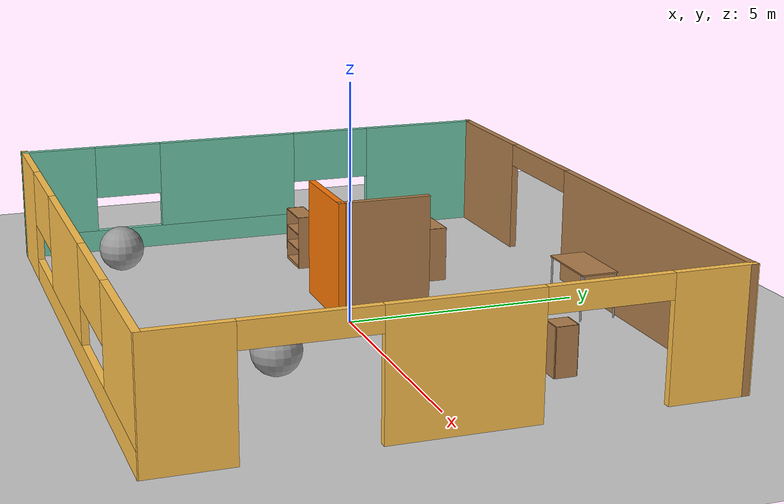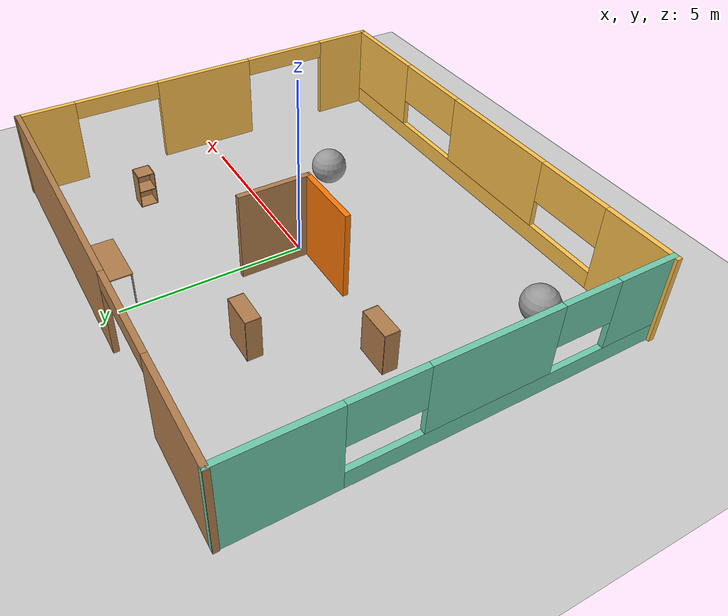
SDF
<sdf version="1.6">
 <world name="default">
  <light name="sun" type="directional">
   <pose>0 0 10 0 -0 0</pose>
   <diffuse>0.8 0.8 0.8 1</diffuse>
   <specular>0.2 0.2 0.2 1</specular>
   <attenuation>
    <range>1000</range>
    <constant>0.9</constant>
    <linear>0.01</linear>
    <quadratic>0.001</quadratic>
   </attenuation>
   <direction>-0.5 0.1 -0.9</direction>
  </light>
  <model name="ground_plane">
   <static>1</static>
   <link name="link">
    <collision name="collision">
     <geometry><plane><normal>0 0 1</normal><size>100 100</size></plane></geometry>
     <surface>
      <contact><collide_bitmask>65535</collide_bitmask></contact>
      <friction><ode><mu>100</mu><mu2>50</mu2></ode></friction>
     </surface>
    </collision>
    <visual name="visual">
     <cast_shadows>0</cast_shadows>
     <geometry><plane><normal>0 0 1</normal><size>100 100</size></plane></geometry>
     <material>
      <script><uri>file://media/materials/scripts/gazebo.material</uri><name>Gazebo/Grey</name></script>
     </material>
    </visual>
   </link>
  </model>
  <gravity>0 0 -9.8</gravity>
  <magnetic_field>6e-06 2.3e-05 -4.2e-05</magnetic_field>
  <atmosphere type="adiabatic"/>
  <physics name="default_physics" default="0" type="ode">
   <max_step_size>0.001</max_step_size>
   <real_time_factor>1</real_time_factor>
   <real_time_update_rate>1000</real_time_update_rate>
  </physics>
  <scene><ambient>0.4 0.4 0.4 1</ambient><background>0.7 0.7 0.7 1</background><shadows>1</shadows></scene>
  <audio><device>default</device></audio>
  <spherical_coordinates>
   <surface_model>EARTH_WGS84</surface_model>
   <latitude_deg>0</latitude_deg>
   <longitude_deg>0</longitude_deg>
   <elevation>0</elevation>
   <heading_deg>0</heading_deg>
  </spherical_coordinates>
  <model name="houseOW">
   <pose>-0.430114 -0.048845 0 0 -0 0</pose>
   <link name="Wall_0">
    <pose>-0 -5.53116 0 0 -0 0</pose>
    <visual name="Wall_0_Visual_0">
     <pose>-5.44531 0 1.25 0 -0 0</pose>
     <geometry><box><size>2.10938 0.15 2.5</size></box></geometry>
     <material>
      <script><uri>file://media/materials/scripts/gazebo.material</uri><name>Gazebo/Grey</name></script>
      <ambient>1 0.764706 0.305882 1</ambient>
     </material>
     <meta><layer>0</layer></meta>
    </visual>
    <collision name="Wall_0_Collision_0">
     <geometry><box><size>2.10938 0.15 2.5</size></box></geometry>
     <pose>-5.44531 0 1.25 0 -0 0</pose>
    </collision>
    <visual name="Wall_0_Visual_1">
     <pose>1.05469 0 0.25 0 -0 0</pose>
     <geometry><box><size>10.8906 0.15 0.5</size></box></geometry>
     <material>
      <script><uri>file://media/materials/scripts/gazebo.material</uri><name>Gazebo/Grey</name></script>
      <ambient>1 0.764706 0.305882 1</ambient>
     </material>
     <meta><layer>0</layer></meta>
    </visual>
    <collision name="Wall_0_Collision_1">
     <geometry><box><size>10.8906 0.15 0.5</size></box></geometry>
     <pose>1.05469 0 0.25 0 -0 0</pose>
    </collision>
    <visual name="Wall_0_Visual_2">
     <pose>-0.41156 0 1.5 0 -0 0</pose>
     <geometry><box><size>3.60499 0.15 2</size></box></geometry>
     <material>
      <script><uri>file://media/materials/scripts/gazebo.material</uri><name>Gazebo/Grey</name></script>
      <ambient>1 0.764706 0.305882 1</ambient>
     </material>
     <meta><layer>0</layer></meta>
    </visual>
    <collision name="Wall_0_Collision_2">
     <geometry><box><size>3.60499 0.15 2</size></box></geometry>
     <pose>-0.41156 0 1.5 0 -0 0</pose>
    </collision>
    <visual name="Wall_0_Visual_3">
     <pose>5.11022 0 1.5 0 -0 0</pose>
     <geometry><box><size>2.77955 0.15 2</size></box></geometry>
     <material>
      <script><uri>file://media/materials/scripts/gazebo.material</uri><name>Gazebo/Grey</name></script>
      <ambient>1 0.764706 0.305882 1</ambient>
     </material>
     <meta><layer>0</layer></meta>
    </visual>
    <collision name="Wall_0_Collision_3">
     <geometry><box><size>2.77955 0.15 2</size></box></geometry>
     <pose>5.11022 0 1.5 0 -0 0</pose>
    </collision>
    <visual name="Wall_0_Visual_4">
     <pose>-3.30234 0 1.9 0 -0 0</pose>
     <geometry><box><size>2.17656 0.15 1.2</size></box></geometry>
     <material>
      <script><uri>file://media/materials/scripts/gazebo.material</uri><name>Gazebo/Grey</name></script>
      <ambient>1 0.764706 0.305882 1</ambient>
     </material>
     <meta><layer>0</layer></meta>
    </visual>
    <collision name="Wall_0_Collision_4">
     <geometry><box><size>2.17656 0.15 1.2</size></box></geometry>
     <pose>-3.30234 0 1.9 0 -0 0</pose>
    </collision>
    <visual name="Wall_0_Visual_5">
     <pose>2.55569 0 1.9 0 -0 0</pose>
     <geometry><box><size>2.32951 0.15 1.2</size></box></geometry>
     <material>
      <script><uri>file://media/materials/scripts/gazebo.material</uri><name>Gazebo/Grey</name></script>
      <ambient>1 0.764706 0.305882 1</ambient>
     </material>
     <meta><layer>0</layer></meta>
    </visual>
    <collision name="Wall_0_Collision_5">
     <geometry><box><size>2.32951 0.15 1.2</size></box></geometry>
     <pose>2.55569 0 1.9 0 -0 0</pose>
    </collision>
   </link>
   <link name="Wall_2">
    <pose>6.425 0.011717 0 0 -0 1.5708</pose>
    <visual name="Wall_2_Visual_0">
     <pose>-4.76662 0 1.25 0 -0 0</pose>
     <geometry><box><size>1.65624 0.15 2.5</size></box></geometry>
     <material>
      <script><uri>file://media/materials/scripts/gazebo.material</uri><name>Gazebo/Grey</name></script>
      <ambient>1 0.764706 0.305882 1</ambient>
     </material>
     <meta><layer>0</layer></meta>
    </visual>
    <collision name="Wall_2_Collision_0">
     <geometry><box><size>1.65624 0.15 2.5</size></box></geometry>
     <pose>-4.76662 0 1.25 0 -0 0</pose>
    </collision>
    <visual name="Wall_2_Visual_1">
     <pose>0.02273 0 1.25 0 -0 0</pose>
     <geometry><box><size>2.93043 0.15 2.5</size></box></geometry>
     <material>
      <script><uri>file://media/materials/scripts/gazebo.material</uri><name>Gazebo/Grey</name></script>
      <ambient>1 0.764706 0.305882 1</ambient>
     </material>
     <meta><layer>0</layer></meta>
    </visual>
    <collision name="Wall_2_Collision_1">
     <geometry><box><size>2.93043 0.15 2.5</size></box></geometry>
     <pose>0.02273 0 1.25 0 -0 0</pose>
    </collision>
    <visual name="Wall_2_Visual_2">
     <pose>4.76275 0 1.25 0 -0 0</pose>
     <geometry><box><size>1.66398 0.15 2.5</size></box></geometry>
     <material>
      <script><uri>file://media/materials/scripts/gazebo.material</uri><name>Gazebo/Grey</name></script>
      <ambient>1 0.764706 0.305882 1</ambient>
     </material>
     <meta><layer>0</layer></meta>
    </visual>
    <collision name="Wall_2_Collision_2">
     <geometry><box><size>1.66398 0.15 2.5</size></box></geometry>
     <pose>4.76275 0 1.25 0 -0 0</pose>
    </collision>
    <visual name="Wall_2_Visual_3">
     <pose>-2.69049 0 2.25 0 -0 0</pose>
     <geometry><box><size>2.49601 0.15 0.5</size></box></geometry>
     <material>
      <script><uri>file://media/materials/scripts/gazebo.material</uri><name>Gazebo/Grey</name></script>
      <ambient>1 0.764706 0.305882 1</ambient>
     </material>
     <meta><layer>0</layer></meta>
    </visual>
    <collision name="Wall_2_Collision_3">
     <geometry><box><size>2.49601 0.15 0.5</size></box></geometry>
     <pose>-2.69049 0 2.25 0 -0 0</pose>
    </collision>
    <visual name="Wall_2_Visual_4">
     <pose>2.70935 0 2.25 0 -0 0</pose>
     <geometry><box><size>2.44281 0.15 0.5</size></box></geometry>
     <material>
      <script><uri>file://media/materials/scripts/gazebo.material</uri><name>Gazebo/Grey</name></script>
      <ambient>1 0.764706 0.305882 1</ambient>
     </material>
     <meta><layer>0</layer></meta>
    </visual>
    <collision name="Wall_2_Collision_4">
     <geometry><box><size>2.44281 0.15 0.5</size></box></geometry>
     <pose>2.70935 0 2.25 0 -0 0</pose>
    </collision>
   </link>
   <link name="Wall_3">
    <pose>0.028514 5.50833 0 0 -0 3.14159</pose>
    <visual name="Wall_3_Visual_0">
     <pose>-2.82009 0 1.25 0 -0 0</pose>
     <geometry><box><size>7.30279 0.15 2.5</size></box></geometry>
     <material>
      <script><uri>file://media/materials/scripts/gazebo.material</uri><name>Gazebo/Wood</name></script>
      <ambient>0.435294 0.796078 0.67451 1</ambient>
     </material>
     <meta><layer>0</layer></meta>
    </visual>
    <collision name="Wall_3_Collision_0">
     <geometry><box><size>7.30279 0.15 2.5</size></box></geometry>
     <pose>-2.82009 0 1.25 0 -0 0</pose>
    </collision>
    <visual name="Wall_3_Visual_1">
     <pose>4.98851 0 1.25 0 -0 0</pose>
     <geometry><box><size>2.96595 0.15 2.5</size></box></geometry>
     <material>
      <script><uri>file://media/materials/scripts/gazebo.material</uri><name>Gazebo/Wood</name></script>
      <ambient>0.435294 0.796078 0.67451 1</ambient>
     </material>
     <meta><layer>0</layer></meta>
    </visual>
    <collision name="Wall_3_Collision_1">
     <geometry><box><size>2.96595 0.15 2.5</size></box></geometry>
     <pose>4.98851 0 1.25 0 -0 0</pose>
    </collision>
    <visual name="Wall_3_Visual_2">
     <pose>2.16842 0 2.25 0 -0 0</pose>
     <geometry><box><size>2.67423 0.15 0.5</size></box></geometry>
     <material>
      <script><uri>file://media/materials/scripts/gazebo.material</uri><name>Gazebo/Wood</name></script>
      <ambient>0.435294 0.796078 0.67451 1</ambient>
     </material>
     <meta><layer>0</layer></meta>
    </visual>
    <collision name="Wall_3_Collision_2">
     <geometry><box><size>2.67423 0.15 0.5</size></box></geometry>
     <pose>2.16842 0 2.25 0 -0 0</pose>
    </collision>
   </link>
   <link name="Wall_4">
    <pose>-6.34484 -0.011414 0 0 -0 -1.5708</pose>
    <visual name="Wall_4_Visual_0">
     <pose>-4.19276 0 1.25 0 -0 0</pose>
     <geometry><box><size>2.80457 0.15 2.5</size></box></geometry>
     <material>
      <script><uri>file://media/materials/scripts/gazebo.material</uri><name>Gazebo/Grey</name></script>
      <ambient>0.435294 0.796078 0.67451 1</ambient>
     </material>
     <meta><layer>0</layer></meta>
    </visual>
    <collision name="Wall_4_Collision_0">
     <geometry><box><size>2.80457 0.15 2.5</size></box></geometry>
     <pose>-4.19276 0 1.25 0 -0 0</pose>
    </collision>
    <visual name="Wall_4_Visual_1">
     <pose>1.40229 0 0.25 0 -0 0</pose>
     <geometry><box><size>8.38551 0.15 0.5</size></box></geometry>
     <material>
      <script><uri>file://media/materials/scripts/gazebo.material</uri><name>Gazebo/Grey</name></script>
      <ambient>0.435294 0.796078 0.67451 1</ambient>
     </material>
     <meta><layer>0</layer></meta>
    </visual>
    <collision name="Wall_4_Collision_1">
     <geometry><box><size>8.38551 0.15 0.5</size></box></geometry>
     <pose>1.40229 0 0.25 0 -0 0</pose>
    </collision>
    <visual name="Wall_4_Visual_2">
     <pose>0.729735 0 1.5 0 -0 0</pose>
     <geometry><box><size>3.29909 0.15 2</size></box></geometry>
     <material>
      <script><uri>file://media/materials/scripts/gazebo.material</uri><name>Gazebo/Grey</name></script>
      <ambient>0.435294 0.796078 0.67451 1</ambient>
     </material>
     <meta><layer>0</layer></meta>
    </visual>
    <collision name="Wall_4_Collision_2">
     <geometry><box><size>3.29909 0.15 2</size></box></geometry>
     <pose>0.729735 0 1.5 0 -0 0</pose>
    </collision>
    <visual name="Wall_4_Visual_3">
     <pose>4.75425 0 1.5 0 -0 0</pose>
     <geometry><box><size>1.6816 0.15 2</size></box></geometry>
     <material>
      <script><uri>file://media/materials/scripts/gazebo.material</uri><name>Gazebo/Grey</name></script>
      <ambient>0.435294 0.796078 0.67451 1</ambient>
     </material>
     <meta><layer>0</layer></meta>
    </visual>
    <collision name="Wall_4_Collision_3">
     <geometry><box><size>1.6816 0.15 2</size></box></geometry>
     <pose>4.75425 0 1.5 0 -0 0</pose>
    </collision>
    <visual name="Wall_4_Visual_4">
     <pose>-1.85514 0 1.9 0 -0 0</pose>
     <geometry><box><size>1.87066 0.15 1.2</size></box></geometry>
     <material>
      <script><uri>file://media/materials/scripts/gazebo.material</uri><name>Gazebo/Grey</name></script>
      <ambient>0.435294 0.796078 0.67451 1</ambient>
     </material>
     <meta><layer>0</layer></meta>
    </visual>
    <collision name="Wall_4_Collision_4">
     <geometry><box><size>1.87066 0.15 1.2</size></box></geometry>
     <pose>-1.85514 0 1.9 0 -0 0</pose>
    </collision>
    <visual name="Wall_4_Visual_5">
     <pose>3.14636 0 1.9 0 -0 0</pose>
     <geometry><box><size>1.53417 0.15 1.2</size></box></geometry>
     <material>
      <script><uri>file://media/materials/scripts/gazebo.material</uri><name>Gazebo/Grey</name></script>
      <ambient>0.435294 0.796078 0.67451 1</ambient>
     </material>
     <meta><layer>0</layer></meta>
    </visual>
    <collision name="Wall_4_Collision_5">
     <geometry><box><size>1.53417 0.15 1.2</size></box></geometry>
     <pose>3.14636 0 1.9 0 -0 0</pose>
    </collision>
   </link>
   <link name="Wall_7">
    <collision name="Wall_7_Collision">
     <geometry><box><size>2 0.15 2.5</size></box></geometry>
     <pose>0 0 1.25 0 -0 0</pose>
    </collision>
    <visual name="Wall_7_Visual">
     <pose>0 0 1.25 0 -0 0</pose>
     <geometry><box><size>2 0.15 2.5</size></box></geometry>
     <material>
      <script><uri>file://media/materials/scripts/gazebo.material</uri><name>Gazebo/Wood</name></script>
      <ambient>0.996078 0.47451 0.0196078 1</ambient>
     </material>
     <meta><layer>0</layer></meta>
    </visual>
    <pose>0.200244 0.852806 0 0 -0 -1.5708</pose>
   </link>
   <link name="Wall_8">
    <collision name="Wall_8_Collision">
     <geometry><box><size>2 0.15 2.5</size></box></geometry>
     <pose>0 0 1.25 0 -0 0</pose>
    </collision>
    <visual name="Wall_8_Visual">
     <pose>0 0 1.25 0 -0 0</pose>
     <geometry><box><size>2 0.15 2.5</size></box></geometry>
     <material>
      <script><uri>file://media/materials/scripts/gazebo.material</uri><name>Gazebo/Grey</name></script>
      <ambient>0.996078 0.47451 0.0196078 1</ambient>
     </material>
     <meta><layer>0</layer></meta>
    </visual>
    <pose>-0.724756 -0.072194 0 0 -0 3.14159</pose>
   </link>
   <static>1</static>
  </model>
  <model name="unit_sphere">
   <pose>2.35861 -2.26095 0.5 0 -0 0</pose>
   <link name="link">
    <inertial>
     <mass>1</mass>
     <inertia><ixx>0.1</ixx><ixy>0</ixy><ixz>0</ixz><iyy>0.1</iyy><iyz>0</iyz><izz>0.1</izz></inertia>
    </inertial>
    <collision name="collision"><geometry><sphere><radius>0.5</radius></sphere></geometry></collision>
    <visual name="visual">
     <geometry><sphere><radius>0.5</radius></sphere></geometry>
     <material>
      <script><name>Gazebo/Grey</name><uri>file://media/materials/scripts/gazebo.material</uri></script>
     </material>
    </visual>
   </link>
  </model>
  <model name="bookshelf">
   <static>1</static>
   <link name="link">
    <inertial><mass>1</mass></inertial>
    <collision name="back">
     <pose>0 0.005 0.6 0 -0 0</pose>
     <geometry><box><size>0.9 0.01 1.2</size></box></geometry>
    </collision>
    <visual name="visual1">
     <pose>0 0.005 0.6 0 -0 0</pose>
     <geometry><box><size>0.9 0.01 1.2</size></box></geometry>
     <material>
      <script><uri>file://media/materials/scripts/gazebo.material</uri><name>Gazebo/Wood</name></script>
     </material>
    </visual>
    <collision name="left_side">
     <pose>0.45 -0.195 0.6 0 -0 0</pose>
     <geometry><box><size>0.02 0.4 1.2</size></box></geometry>
    </collision>
    <visual name="visual2">
     <pose>0.45 -0.195 0.6 0 -0 0</pose>
     <geometry><box><size>0.02 0.4 1.2</size></box></geometry>
     <material>
      <script><uri>file://media/materials/scripts/gazebo.material</uri><name>Gazebo/Wood</name></script>
     </material>
    </visual>
    <collision name="right_side">
     <pose>-0.45 -0.195 0.6 0 -0 0</pose>
     <geometry><box><size>0.02 0.4 1.2</size></box></geometry>
    </collision>
    <visual name="visual3">
     <pose>-0.45 -0.195 0.6 0 -0 0</pose>
     <geometry><box><size>0.02 0.4 1.2</size></box></geometry>
     <material>
      <script><uri>file://media/materials/scripts/gazebo.material</uri><name>Gazebo/Wood</name></script>
     </material>
    </visual>
    <collision name="bottom">
     <pose>0 -0.195 0.03 0 -0 0</pose>
     <geometry><box><size>0.88 0.4 0.06</size></box></geometry>
    </collision>
    <visual name="visual4">
     <pose>0 -0.195 0.03 0 -0 0</pose>
     <geometry><box><size>0.88 0.4 0.06</size></box></geometry>
     <material>
      <script><uri>file://media/materials/scripts/gazebo.material</uri><name>Gazebo/Wood</name></script>
     </material>
    </visual>
    <collision name="top">
     <pose>0 -0.195 1.19 0 -0 0</pose>
     <geometry><box><size>0.88 0.4 0.02</size></box></geometry>
    </collision>
    <visual name="visual5">
     <pose>0 -0.195 1.19 0 -0 0</pose>
     <geometry><box><size>0.88 0.4 0.02</size></box></geometry>
     <material>
      <script><uri>file://media/materials/scripts/gazebo.material</uri><name>Gazebo/Wood</name></script>
     </material>
    </visual>
    <collision name="low_shelf">
     <pose>0 -0.195 0.43 0 -0 0</pose>
     <geometry><box><size>0.88 0.4 0.02</size></box></geometry>
    </collision>
    <visual name="visual6">
     <pose>0 -0.195 0.43 0 -0 0</pose>
     <geometry><box><size>0.88 0.4 0.02</size></box></geometry>
     <material>
      <script><uri>file://media/materials/scripts/gazebo.material</uri><name>Gazebo/Wood</name></script>
     </material>
    </visual>
    <collision name="high_shelf">
     <pose>0 -0.195 0.8 0 -0 0</pose>
     <geometry><box><size>0.88 0.4 0.02</size></box></geometry>
    </collision>
    <visual name="visual7">
     <pose>0 -0.195 0.8 0 -0 0</pose>
     <geometry><box><size>0.88 0.4 0.02</size></box></geometry>
     <material>
      <script><uri>file://media/materials/scripts/gazebo.material</uri><name>Gazebo/Wood</name></script>
     </material>
    </visual>
   </link>
   <pose>-2.48922 2.94706 0 0 -0 0</pose>
  </model>
  <model name="bookshelf_0">
   <static>1</static>
   <link name="link">
    <inertial><mass>1</mass></inertial>
    <collision name="back">
     <pose>0 0.005 0.6 0 -0 0</pose>
     <geometry><box><size>0.9 0.01 1.2</size></box></geometry>
    </collision>
    <visual name="visual1">
     <pose>0 0.005 0.6 0 -0 0</pose>
     <geometry><box><size>0.9 0.01 1.2</size></box></geometry>
     <material>
      <script><uri>file://media/materials/scripts/gazebo.material</uri><name>Gazebo/Wood</name></script>
     </material>
    </visual>
    <collision name="left_side">
     <pose>0.45 -0.195 0.6 0 -0 0</pose>
     <geometry><box><size>0.02 0.4 1.2</size></box></geometry>
    </collision>
    <visual name="visual2">
     <pose>0.45 -0.195 0.6 0 -0 0</pose>
     <geometry><box><size>0.02 0.4 1.2</size></box></geometry>
     <material>
      <script><uri>file://media/materials/scripts/gazebo.material</uri><name>Gazebo/Wood</name></script>
     </material>
    </visual>
    <collision name="right_side">
     <pose>-0.45 -0.195 0.6 0 -0 0</pose>
     <geometry><box><size>0.02 0.4 1.2</size></box></geometry>
    </collision>
    <visual name="visual3">
     <pose>-0.45 -0.195 0.6 0 -0 0</pose>
     <geometry><box><size>0.02 0.4 1.2</size></box></geometry>
     <material>
      <script><uri>file://media/materials/scripts/gazebo.material</uri><name>Gazebo/Wood</name></script>
     </material>
    </visual>
    <collision name="bottom">
     <pose>0 -0.195 0.03 0 -0 0</pose>
     <geometry><box><size>0.88 0.4 0.06</size></box></geometry>
    </collision>
    <visual name="visual4">
     <pose>0 -0.195 0.03 0 -0 0</pose>
     <geometry><box><size>0.88 0.4 0.06</size></box></geometry>
     <material>
      <script><uri>file://media/materials/scripts/gazebo.material</uri><name>Gazebo/Wood</name></script>
     </material>
    </visual>
    <collision name="top">
     <pose>0 -0.195 1.19 0 -0 0</pose>
     <geometry><box><size>0.88 0.4 0.02</size></box></geometry>
    </collision>
    <visual name="visual5">
     <pose>0 -0.195 1.19 0 -0 0</pose>
     <geometry><box><size>0.88 0.4 0.02</size></box></geometry>
     <material>
      <script><uri>file://media/materials/scripts/gazebo.material</uri><name>Gazebo/Wood</name></script>
     </material>
    </visual>
    <collision name="low_shelf">
     <pose>0 -0.195 0.43 0 -0 0</pose>
     <geometry><box><size>0.88 0.4 0.02</size></box></geometry>
    </collision>
    <visual name="visual6">
     <pose>0 -0.195 0.43 0 -0 0</pose>
     <geometry><box><size>0.88 0.4 0.02</size></box></geometry>
     <material>
      <script><uri>file://media/materials/scripts/gazebo.material</uri><name>Gazebo/Wood</name></script>
     </material>
    </visual>
    <collision name="high_shelf">
     <pose>0 -0.195 0.8 0 -0 0</pose>
     <geometry><box><size>0.88 0.4 0.02</size></box></geometry>
    </collision>
    <visual name="visual7">
     <pose>0 -0.195 0.8 0 -0 0</pose>
     <geometry><box><size>0.88 0.4 0.02</size></box></geometry>
     <material>
      <script><uri>file://media/materials/scripts/gazebo.material</uri><name>Gazebo/Wood</name></script>
     </material>
    </visual>
   </link>
   <pose>-4.3112 0.482435 0 0 -0 0</pose>
  </model>
  <model name="cabinet">
   <static>1</static>
   <link name="cabinet_bottom_plate">
    <inertial>
     <pose>0 0 -1 0 -0 0</pose>
     <inertia><ixx>2.05</ixx><ixy>0</ixy><ixz>0</ixz><iyy>2.05</iyy><iyz>0</iyz><izz>2.05</izz></inertia>
     <mass>25</mass>
    </inertial>
    <collision name="cabinet_bottom_plate_geom">
     <pose>0 0 0.01 0 -0 0</pose>
     <geometry><box><size>0.45 0.45 0.02</size></box></geometry>
    </collision>
    <visual name="cabinet_bottom_plate_geom_visual">
     <pose>0 0 0.01 0 -0 0</pose>
     <geometry><box><size>0.45 0.45 0.02</size></box></geometry>
     <material>
      <script><uri>file://media/materials/scripts/gazebo.material</uri><name>Gazebo/Wood</name></script>
     </material>
    </visual>
    <collision name="cabinet_bottom_plate_geom_cabinet_back_plate">
     <pose>0.235 0 0.51 0 -0 0</pose>
     <geometry><box><size>0.02 0.45 1.02</size></box></geometry>
    </collision>
    <visual name="cabinet_bottom_plate_geom_cabinet_back_plate_visual">
     <pose>0.235 0 0.51 0 -0 0</pose>
     <geometry><box><size>0.02 0.45 1.02</size></box></geometry>
     <material>
      <script><uri>file://media/materials/scripts/gazebo.material</uri><name>Gazebo/Wood</name></script>
     </material>
    </visual>
    <collision name="cabinet_bottom_plate_geom_cabinet_left_plate">
     <pose>0 0.235 0.51 0 -0 0</pose>
     <geometry><box><size>0.45 0.02 1.02</size></box></geometry>
    </collision>
    <visual name="cabinet_bottom_plate_geom_cabinet_left_plate_visual">
     <pose>0 0.235 0.51 0 -0 0</pose>
     <geometry><box><size>0.45 0.02 1.02</size></box></geometry>
     <material>
      <script><uri>file://media/materials/scripts/gazebo.material</uri><name>Gazebo/Wood</name></script>
     </material>
    </visual>
    <collision name="cabinet_bottom_plate_geom_cabinet_middle_plate">
     <pose>0 0 0.51 0 -0 0</pose>
     <geometry><box><size>0.45 0.45 0.02</size></box></geometry>
    </collision>
    <visual name="cabinet_bottom_plate_geom_cabinet_middle_plate_visual">
     <pose>0 0 0.51 0 -0 0</pose>
     <geometry><box><size>0.45 0.45 0.02</size></box></geometry>
     <material>
      <script><uri>file://media/materials/scripts/gazebo.material</uri><name>Gazebo/Wood</name></script>
     </material>
    </visual>
    <collision name="cabinet_bottom_plate_geom_cabinet_right_plate">
     <pose>0 -0.235 0.51 0 -0 0</pose>
     <geometry><box><size>0.45 0.02 1.02</size></box></geometry>
    </collision>
    <visual name="cabinet_bottom_plate_geom_cabinet_right_plate_visual">
     <pose>0 -0.235 0.51 0 -0 0</pose>
     <geometry><box><size>0.45 0.02 1.02</size></box></geometry>
     <material>
      <script><uri>file://media/materials/scripts/gazebo.material</uri><name>Gazebo/Wood</name></script>
     </material>
    </visual>
    <collision name="cabinet_bottom_plate_geom_cabinet_top_plate">
     <pose>0 0 1.01 0 -0 0</pose>
     <geometry><box><size>0.45 0.45 0.02</size></box></geometry>
    </collision>
    <visual name="cabinet_bottom_plate_geom_cabinet_top_plate_visual">
     <pose>0 0 1.01 0 -0 0</pose>
     <geometry><box><size>0.45 0.45 0.02</size></box></geometry>
     <material>
      <script><uri>file://media/materials/scripts/gazebo.material</uri><name>Gazebo/Wood</name></script>
     </material>
    </visual>
   </link>
   <pose>3.9685 2.80415 0 0 -0 0</pose>
  </model>
  <model name="table">
   <static>1</static>
   <link name="link">
    <collision name="surface">
     <pose>0 0 1 0 -0 0</pose>
     <geometry><box><size>1.5 0.8 0.03</size></box></geometry>
     <surface><friction><ode><mu>0.6</mu><mu2>0.6</mu2></ode></friction></surface>
    </collision>
    <visual name="visual1">
     <pose>0 0 1 0 -0 0</pose>
     <geometry><box><size>1.5 0.8 0.03</size></box></geometry>
     <material>
      <script><uri>file://media/materials/scripts/gazebo.material</uri><name>Gazebo/Wood</name></script>
     </material>
    </visual>
    <collision name="front_left_leg">
     <pose>0.68 0.38 0.5 0 -0 0</pose>
     <geometry><cylinder><radius>0.02</radius><length>1</length></cylinder></geometry>
    </collision>
    <visual name="front_left_leg">
     <pose>0.68 0.38 0.5 0 -0 0</pose>
     <geometry><cylinder><radius>0.02</radius><length>1</length></cylinder></geometry>
     <material>
      <script><uri>file://media/materials/scripts/gazebo.material</uri><name>Gazebo/Grey</name></script>
     </material>
    </visual>
    <collision name="front_right_leg">
     <pose>0.68 -0.38 0.5 0 -0 0</pose>
     <geometry><cylinder><radius>0.02</radius><length>1</length></cylinder></geometry>
    </collision>
    <visual name="front_right_leg">
     <pose>0.68 -0.38 0.5 0 -0 0</pose>
     <geometry><cylinder><radius>0.02</radius><length>1</length></cylinder></geometry>
     <material>
      <script><uri>file://media/materials/scripts/gazebo.material</uri><name>Gazebo/Grey</name></script>
     </material>
    </visual>
    <collision name="back_right_leg">
     <pose>-0.68 -0.38 0.5 0 -0 0</pose>
     <geometry><cylinder><radius>0.02</radius><length>1</length></cylinder></geometry>
    </collision>
    <visual name="back_right_leg">
     <pose>-0.68 -0.38 0.5 0 -0 0</pose>
     <geometry><cylinder><radius>0.02</radius><length>1</length></cylinder></geometry>
     <material>
      <script><uri>file://media/materials/scripts/gazebo.material</uri><name>Gazebo/Grey</name></script>
     </material>
    </visual>
    <collision name="back_left_leg">
     <pose>-0.68 0.38 0.5 0 -0 0</pose>
     <geometry><cylinder><radius>0.02</radius><length>1</length></cylinder></geometry>
    </collision>
    <visual name="back_left_leg">
     <pose>-0.68 0.38 0.5 0 -0 0</pose>
     <geometry><cylinder><radius>0.02</radius><length>1</length></cylinder></geometry>
     <material>
      <script><uri>file://media/materials/scripts/gazebo.material</uri><name>Gazebo/Grey</name></script>
     </material>
    </visual>
   </link>
   <pose>0.784126 4.88665 0 0 -0 0</pose>
  </model>
  <model name="unit_sphere_0">
   <pose>-5.09467 -3.73317 0.5 0 -0 0</pose>
   <link name="link">
    <inertial>
     <mass>1</mass>
     <inertia><ixx>0.1</ixx><ixy>0</ixy><ixz>0</ixz><iyy>0.1</iyy><iyz>0</iyz><izz>0.1</izz></inertia>
    </inertial>
    <collision name="collision"><geometry><sphere><radius>0.5</radius></sphere></geometry></collision>
    <visual name="visual">
     <geometry><sphere><radius>0.5</radius></sphere></geometry>
     <material>
      <script><name>Gazebo/Grey</name><uri>file://media/materials/scripts/gazebo.material</uri></script>
     </material>
    </visual>
   </link>
  </model>
 </world>
</sdf>
